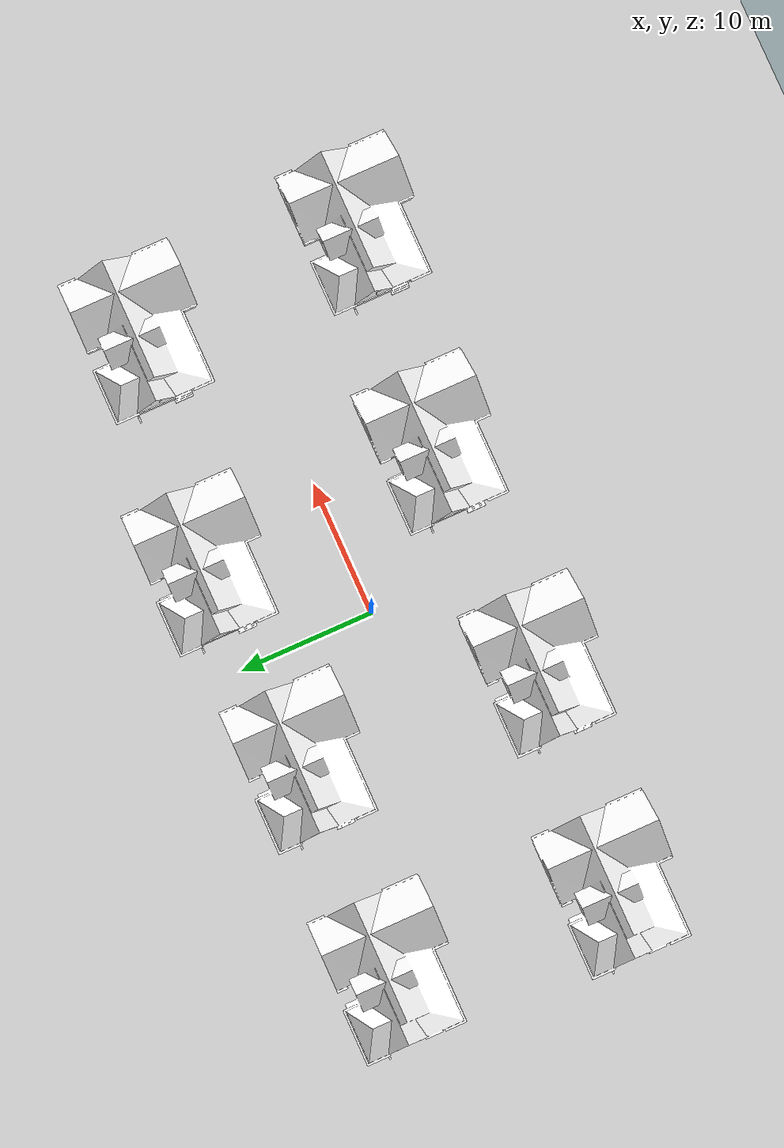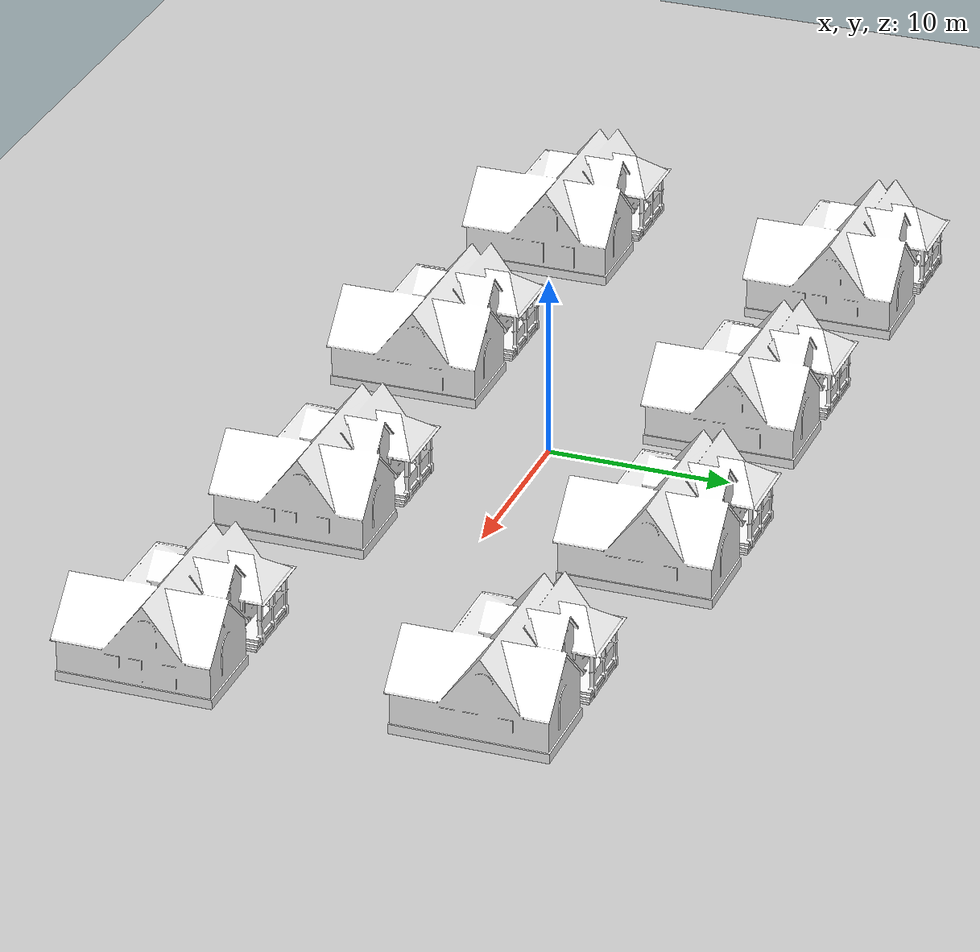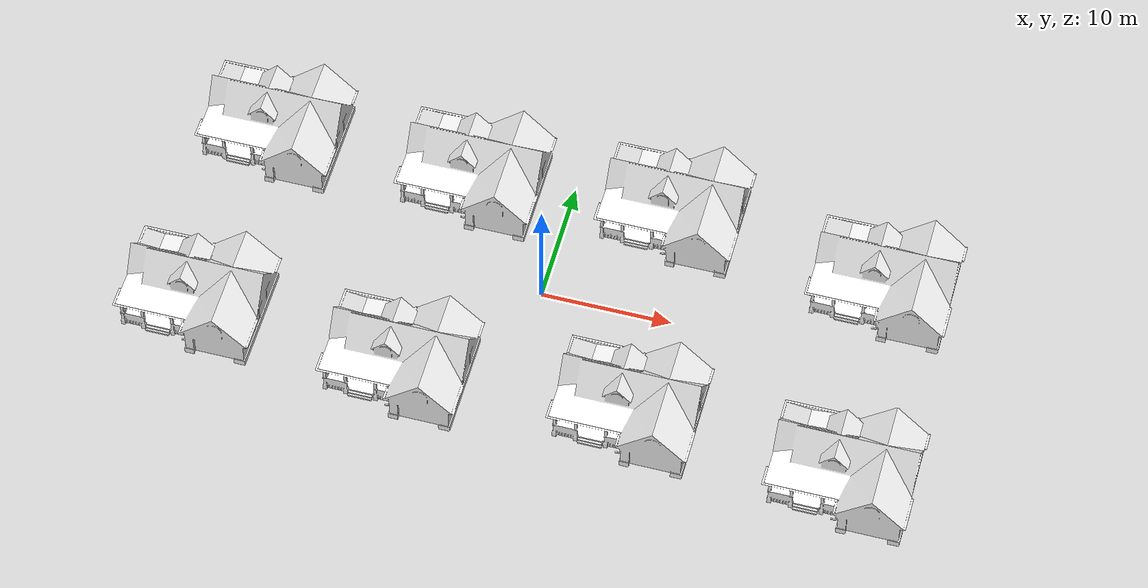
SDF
<sdf version="1.6">
 <world name="default">
  <light name="sun" type="directional">
   <pose>0 0 10 0 -0 0</pose>
   <diffuse>0.8 0.8 0.8 1</diffuse>
   <specular>0.1 0.1 0.1 1</specular>
   <attenuation>
    <range>1000</range>
    <constant>0.9</constant>
    <linear>0.01</linear>
    <quadratic>0.001</quadratic>
   </attenuation>
   <direction>-0.5 0.5 -1</direction>
  </light>
  <model name="ground_plane">
   <static>1</static>
   <link name="link">
    <collision name="collision">
     <geometry><plane><normal>0 0 1</normal><size>100 100</size></plane></geometry>
     <surface><friction><ode><mu>100</mu><mu2>50</mu2></ode></friction></surface>
    </collision>
    <visual name="visual">
     <cast_shadows>0</cast_shadows>
     <geometry><plane><normal>0 0 1</normal><size>100 100</size></plane></geometry>
     <material>
      <script><uri>file://media/materials/scripts/gazebo.material</uri><name>Gazebo/Grey</name></script>
     </material>
    </visual>
   </link>
  </model>
  <gravity>0 0 -9.8</gravity>
  <magnetic_field>6e-06 2.3e-05 -4.2e-05</magnetic_field>
  <atmosphere type="adiabatic"/>
  <physics name="default_physics" default="0" type="ode">
   <max_step_size>0.001</max_step_size>
   <real_time_factor>1</real_time_factor>
   <real_time_update_rate>1000</real_time_update_rate>
  </physics>
  <scene><ambient>0.4 0.4 0.4 1</ambient><background>0.7 0.7 0.7 1</background><shadows>1</shadows></scene>
  <spherical_coordinates>
   <surface_model>EARTH_WGS84</surface_model>
   <latitude_deg>0</latitude_deg>
   <longitude_deg>0</longitude_deg>
   <elevation>0</elevation>
   <heading_deg>0</heading_deg>
  </spherical_coordinates>
  <model name="House 1">
   <static>1</static>
   <link name="link">
    <collision name="collision">
     <geometry><mesh><uri>model://house_1/meshes/house_1.dae</uri><scale>1 1 1</scale></mesh></geometry>
    </collision>
    <visual name="visual">
     <geometry><mesh><uri>model://house_1/meshes/house_1.dae</uri><scale>1 1 1</scale></mesh></geometry>
     <material>
      <script>
       <uri>model://house_1/materials/scripts</uri>
       <uri>model://house_1/materials/textures</uri>
       <name>House_1/Diffuse</name>
      </script>
      <shader type="normal_map_object_space"><normal_map>House_1_Normal.png</normal_map></shader>
     </material>
    </visual>
   </link>
   <pose>-7.46145 8.79945 0 0 -0 0</pose>
  </model>
  <model name="House 1_0">
   <static>1</static>
   <link name="link">
    <collision name="collision">
     <geometry><mesh><uri>model://house_1/meshes/house_1.dae</uri><scale>1 1 1</scale></mesh></geometry>
    </collision>
    <visual name="visual">
     <geometry><mesh><uri>model://house_1/meshes/house_1.dae</uri><scale>1 1 1</scale></mesh></geometry>
     <material>
      <script>
       <uri>model://house_1/materials/scripts</uri>
       <uri>model://house_1/materials/textures</uri>
       <name>House_1/Diffuse</name>
      </script>
      <shader type="normal_map_object_space"><normal_map>House_1_Normal.png</normal_map></shader>
     </material>
    </visual>
   </link>
   <pose>-8.10925 -9.11842 0 0 -0 0</pose>
  </model>
  <model name="House 1_1">
   <static>1</static>
   <link name="link">
    <collision name="collision">
     <geometry><mesh><uri>model://house_1/meshes/house_1.dae</uri><scale>1 1 1</scale></mesh></geometry>
    </collision>
    <visual name="visual">
     <geometry><mesh><uri>model://house_1/meshes/house_1.dae</uri><scale>1 1 1</scale></mesh></geometry>
     <material>
      <script>
       <uri>model://house_1/materials/scripts</uri>
       <uri>model://house_1/materials/textures</uri>
       <name>House_1/Diffuse</name>
      </script>
      <shader type="normal_map_object_space"><normal_map>House_1_Normal.png</normal_map></shader>
     </material>
    </visual>
   </link>
   <pose>7.95329 9.48625 0 0 -0 0</pose>
  </model>
  <model name="House 1_2">
   <static>1</static>
   <link name="link">
    <collision name="collision">
     <geometry><mesh><uri>model://house_1/meshes/house_1.dae</uri><scale>1 1 1</scale></mesh></geometry>
    </collision>
    <visual name="visual">
     <geometry><mesh><uri>model://house_1/meshes/house_1.dae</uri><scale>1 1 1</scale></mesh></geometry>
     <material>
      <script>
       <uri>model://house_1/materials/scripts</uri>
       <uri>model://house_1/materials/textures</uri>
       <name>House_1/Diffuse</name>
      </script>
      <shader type="normal_map_object_space"><normal_map>House_1_Normal.png</normal_map></shader>
     </material>
    </visual>
   </link>
   <pose>9.17603 -8.68439 0 0 -0 0</pose>
  </model>
  <model name="House 1_3">
   <static>1</static>
   <link name="link">
    <collision name="collision">
     <geometry><mesh><uri>model://house_1/meshes/house_1.dae</uri><scale>1 1 1</scale></mesh></geometry>
    </collision>
    <visual name="visual">
     <geometry><mesh><uri>model://house_1/meshes/house_1.dae</uri><scale>1 1 1</scale></mesh></geometry>
     <material>
      <script>
       <uri>model://house_1/materials/scripts</uri>
       <uri>model://house_1/materials/textures</uri>
       <name>House_1/Diffuse</name>
      </script>
      <shader type="normal_map_object_space"><normal_map>House_1_Normal.png</normal_map></shader>
     </material>
    </visual>
   </link>
   <pose>-24.2507 -7.49587 0 0 -0 0</pose>
  </model>
  <model name="House 1_4">
   <static>1</static>
   <link name="link">
    <collision name="collision">
     <geometry><mesh><uri>model://house_1/meshes/house_1.dae</uri><scale>1 1 1</scale></mesh></geometry>
    </collision>
    <visual name="visual">
     <geometry><mesh><uri>model://house_1/meshes/house_1.dae</uri><scale>1 1 1</scale></mesh></geometry>
     <material>
      <script>
       <uri>model://house_1/materials/scripts</uri>
       <uri>model://house_1/materials/textures</uri>
       <name>House_1/Diffuse</name>
      </script>
      <shader type="normal_map_object_space"><normal_map>House_1_Normal.png</normal_map></shader>
     </material>
    </visual>
   </link>
   <pose>-23.3303 9.1596 0 0 -0 0</pose>
  </model>
  <model name="House 1_5">
   <static>1</static>
   <link name="link">
    <collision name="collision">
     <geometry><mesh><uri>model://house_1/meshes/house_1.dae</uri><scale>1 1 1</scale></mesh></geometry>
    </collision>
    <visual name="visual">
     <geometry><mesh><uri>model://house_1/meshes/house_1.dae</uri><scale>1 1 1</scale></mesh></geometry>
     <material>
      <script>
       <uri>model://house_1/materials/scripts</uri>
       <uri>model://house_1/materials/textures</uri>
       <name>House_1/Diffuse</name>
      </script>
      <shader type="normal_map_object_space"><normal_map>House_1_Normal.png</normal_map></shader>
     </material>
    </visual>
   </link>
   <pose>25.5629 -10.1364 0 0 -0 0</pose>
  </model>
  <model name="House 1_6">
   <static>1</static>
   <link name="link">
    <collision name="collision">
     <geometry><mesh><uri>model://house_1/meshes/house_1.dae</uri><scale>1 1 1</scale></mesh></geometry>
    </collision>
    <visual name="visual">
     <geometry><mesh><uri>model://house_1/meshes/house_1.dae</uri><scale>1 1 1</scale></mesh></geometry>
     <material>
      <script>
       <uri>model://house_1/materials/scripts</uri>
       <uri>model://house_1/materials/textures</uri>
       <name>House_1/Diffuse</name>
      </script>
      <shader type="normal_map_object_space"><normal_map>House_1_Normal.png</normal_map></shader>
     </material>
    </visual>
   </link>
   <pose>24.7279 6.9478 0 0 -0 0</pose>
  </model>
 </world>
</sdf>
